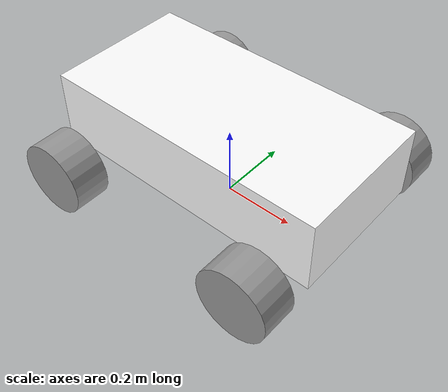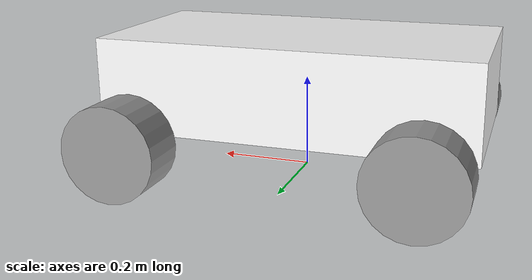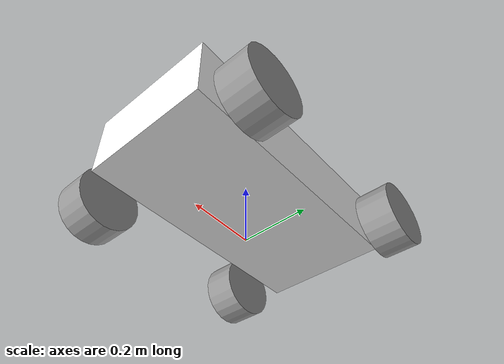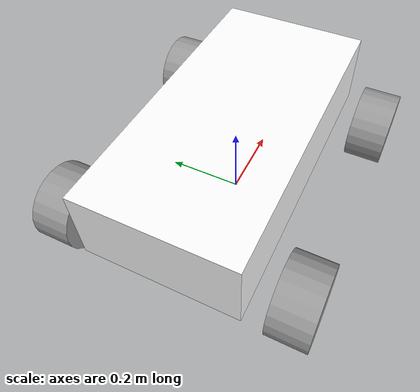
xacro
<?xml version="1.0"?>
<robot name="lasis_vehicle" xmlns:xacro="http://www.ros.org/wiki/xacro">
    <xacro:arg name = "mu_value" default = "1.8"/>
    <xacro:arg name = "kp_value" default = "30000"/>
    <xacro:arg name = "wheel_color" default = "gray"/>
    <xacro:arg name = "wheel_radius" default = "0.1"/>
    <xacro:arg name = "wheel_width" default = "0.1"/>
    <xacro:arg name = "wheel_mass" default = "0.5"/>
    <xacro:arg name = "wheel_ixx" default = "0.002"/>
    <xacro:arg name = "wheel_iyy" default = "0.002"/>
    <xacro:arg name = "wheel_izz" default = "0.003"/>
    <xacro:include filename="$(find lasis_vehicle)/urdf/macros.xacro"/>
    <xacro:include filename="$(find lasis_vehicle)/urdf/materials.xacro"/>
    <xacro:include filename="$(find lasis_vehicle)/urdf/lasis_vehicle.gazebo"/>
    <!-- links -->
    <link name = "base_link"/>
    <xacro:chassis/>
    <xacro:wheel subfix = "fl"/>
    <xacro:wheel subfix = "fr"/>
    <xacro:wheel subfix = "rl"/>
    <xacro:wheel subfix = "rr"/>
    <xacro:bracket subfix = "l"/>
    <xacro:bracket subfix = "r"/>
    <!-- joints -->
    <xacro:chassis_to_base/>
    <xacro:bracket_to_chassis side = "l" value = "1"/>
    <xacro:bracket_to_chassis side = "r" value = "-1"/>
    <xacro:front_wheel_joint side = "l"/>
    <xacro:front_wheel_joint side = "r"/>
    <xacro:rear_wheel_joint side = "l" value = "1"/>
    <xacro:rear_wheel_joint side = "r" value = "-1"/>
    <!-- transmissions -->
    <xacro:front_wheel_transmission side = "l"/>
    <xacro:front_wheel_transmission side = "r"/>
    <xacro:rear_wheel_transmission side = "l"/>
    <xacro:rear_wheel_transmission side = "r"/>
    <xacro:front_wheel_steering side = "l"/>
    <xacro:front_wheel_steering side = "r"/>
</robot>

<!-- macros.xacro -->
<robot name = "lasis_vehicle" xmlns:xacro="http://www.ros.org/wiki/xacro">
    <!-- links -->
    <xacro:macro name = "chassis">
        <link name="chassis">
            <visual>
                <geometry>
                    <box size = "0.8 0.4 0.2"/>
                </geometry>
                <material name="white"/>
            </visual>
            <collision>
                <geometry>
                    <box size = "0.8 0.4 0.2"/>
                </geometry>
            </collision>
            <inertial>
                <origin xyz="0 0 0" rpy="0 0 0" />
                <mass value = "10"/>
                <inertia
                    ixx = "0.167" ixy = "0" ixz = "0"
                    iyy = "0.569" iyz = "0"
                    izz = "0.67"
                />
            </inertial>
        </link>
    </xacro:macro>

    <xacro:macro name = "wheel" params = "subfix">
        <link name="wheel_${subfix}">
            <visual>
                <geometry>
                    <cylinder
                        length = "$(arg wheel_width)"
                        radius = "$(arg wheel_radius)"
                    />
                </geometry>
                <material name = "$(arg wheel_color)"/>
            </visual>
            <collision>
                <geometry>
                    <cylinder
                        length = "$(arg wheel_width)"
                        radius = "$(arg wheel_radius)"
                    />
                </geometry>
            </collision>
            <inertial>
                <mass value = "$(arg wheel_mass)"/>
                <inertia
                    ixx = "$(arg wheel_ixx)" ixy = "0" ixz = "0"
                    iyy = "$(arg wheel_iyy)" iyz = "0"
                    izz = "$(arg wheel_izz)"
                />
            </inertial>
        </link>
    </xacro:macro>

    <xacro:macro name = "bracket" params = "subfix">
        <link name="bracket_${subfix}">
            <visual>
                <geometry>
                    <cylinder
                        length = "0.05"
                        radius = "0.05"
                    />
                </geometry>
                <origin
                    xyz = "0 0 0"
                    rpy = "1.57075 0 0"
                />
                <material name = "$(arg wheel_color)"/>
            </visual>
            <collision>
                <geometry>
                    <cylinder
                        length = "0.05"
                        radius = "0.05"
                    />
                </geometry>
            </collision>
            <inertial>
                <mass value = "0.01"/>
                <inertia
                    ixx = "0.001" ixy = "0" ixz = "0"
                    iyy = "0.001" iyz = "0"
                    izz = "0.001"
                />
            </inertial>
        </link>
    </xacro:macro>

    <!-- joints -->

    <xacro:macro name = "front_wheel_joint" params = "side">
        <joint name = "wheel_f${side}_to_bracket_${side}" type = "continuous">
            <axis xyz = "0 0 -1"/>
            <parent link = "bracket_${side}"/>
            <child link = "wheel_f${side}"/>
        </joint>
    </xacro:macro>

    <xacro:macro name = "bracket_to_chassis" params = "side value">
        <joint name = "bracket_${side}_to_chassis" type = "revolute">
            <origin
                xyz="0.3 ${0.3 * value} -0.1"
                rpy = "1.5708 0 0"
            />
            <axis xyz = "0 -1 0"/>
            <limit
                upper = "0.6"
                lower = "-0.6"
                effort = "1000"
                velocity = "1000"
            />
            <parent link = "chassis"/>
            <child link = "bracket_${side}"/>
        </joint>
    </xacro:macro>

    <xacro:macro name = "rear_wheel_joint" params = "side value">
        <joint name = "wheel_r${side}_to_chassis" type = "continuous">
            <origin
                xyz="-0.3 ${0.3 * value} -0.1"
                rpy = "1.5708 0 0"
            />
            <axis xyz = "0 0 -1"/>
            <parent link = "chassis"/>
            <child link = "wheel_r${side}"/>
        </joint>
    </xacro:macro>

    <xacro:macro name = "chassis_to_base">
        <joint name = "chassis_to_base_link" type = "fixed">
            <origin xyz="0 0 0.2" rpy="0 0 0" />
            <parent link="base_link" />
            <child link="chassis" />
        </joint>
    </xacro:macro>

    <!-- transmissions -->

    <xacro:macro name="rear_wheel_transmission" params="side">
        <transmission name="wheel_r${side}_transmission" type="SimpleTransmission">
            <type>transmission_interface/SimpleTransmission</type>
            <joint name="wheel_r${side}_to_chassis">
                <hardwareInterface>hardware_interface/EffortJointInterface</hardwareInterface>
            </joint>
            <actuator name="wheel_r${side}_motor">
                <hardwareInterface>hardware_interface/EffortJointInterface</hardwareInterface>
                <mechanicalReduction>1</mechanicalReduction>
            </actuator>
        </transmission>
    </xacro:macro>

    <xacro:macro name="front_wheel_transmission" params="side">
        <transmission name="wheel_f${side}_transmission" type="SimpleTransmission">
            <type>transmission_interface/SimpleTransmission</type>
            <joint name="wheel_f${side}_to_bracket_${side}">
                <hardwareInterface>hardware_interface/EffortJointInterface</hardwareInterface>
            </joint>
            <actuator name="wheel_f${side}_motor">
                <hardwareInterface>hardware_interface/EffortJointInterface</hardwareInterface>
                <mechanicalReduction>1</mechanicalReduction>
            </actuator>
        </transmission>
    </xacro:macro>

    <xacro:macro name="front_wheel_steering" params="side">
        <transmission name="bracket_${side}_transmission" type="SimpleTransmission">
            <type>transmission_interface/SimpleTransmission</type>
            <joint name="bracket_${side}_to_chassis">
                <hardwareInterface>hardware_interface/EffortJointInterface</hardwareInterface>
            </joint>
            <actuator name="bracket_${side}_motor">
                <hardwareInterface>hardware_interface/EffortJointInterface</hardwareInterface>
                <mechanicalReduction>1</mechanicalReduction>
            </actuator>
        </transmission>
    </xacro:macro>

</robot>

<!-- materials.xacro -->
<robot name = "lasis_vehicle" xmlns:xacro="http://www.ros.org/wiki/xacro">
    <material name="black">
        <color rgba="0.0 0.0 0.0 1.0"/>
    </material>

    <material name="blue">
        <color rgba="0.0 0.0 0.8 1.0"/>
    </material>

    <material name="green">
        <color rgba="0.0 0.8 0.0 1.0"/>
    </material>

    <material name="grey">
        <color rgba="0.2 0.2 0.2 1.0"/>
    </material>

    <material name="orange">
        <color rgba="${255/255} ${108/255} ${10/255} 1.0"/>
    </material>

    <material name="brown">
        <color rgba="${222/255} ${207/255} ${195/255} 1.0"/>
    </material>

    <material name="red">
        <color rgba="0.8 0.0 0.0 1.0"/>
    </material>

    <material name="white">
        <color rgba="1.0 1.0 1.0 1.0"/>
    </material>
</robot>
